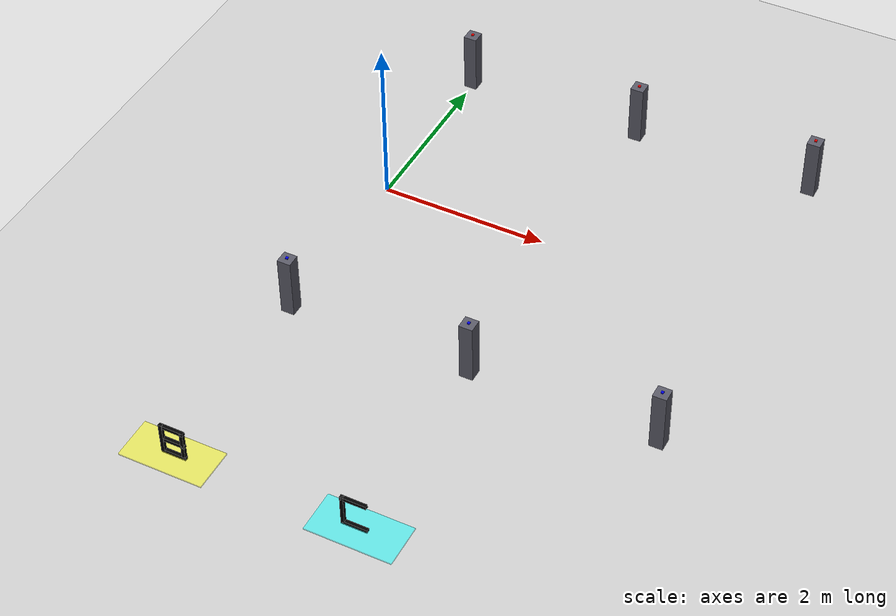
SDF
<sdf version="1.4">
 <world name="default">
  <model name="ground_plane">
   <static>1</static>
   <link name="link">
    <collision name="collision">
     <geometry><plane><normal>0 0 1</normal><size>100 100</size></plane></geometry>
     <surface><friction><ode><mu>100</mu><mu2>50</mu2></ode></friction></surface>
    </collision>
    <visual name="visual">
     <cast_shadows>0</cast_shadows>
     <geometry><plane><normal>0 0 1</normal><size>100 100</size></plane></geometry>
     <material>
      <script><uri>file://media/materials/scripts/gazebo.material</uri><name>Gazebo/Grey</name></script>
     </material>
    </visual>
    <velocity_decay><linear>0</linear><angular>0</angular></velocity_decay>
   </link>
  </model>
  <model name="red_cube_3">
   <pose>0.0 2.2 0.75 0 0 0.0</pose>
   <link name="link">
    <inertial><mass>0.1</mass></inertial>
    <collision name="collision"><geometry><box><size>0.03 0.03 0.03</size></box></geometry></collision>
    <visual name="visual">
     <geometry><box><size>0.03 0.03 0.03</size></box></geometry>
     <material><ambient>1 0 0 1</ambient><diffuse>1 0 0 1</diffuse></material>
    </visual>
   </link>
  </model>
  <model name="red_cube_4">
   <pose>2.2 2.2 0.75 0 0 0.0</pose>
   <link name="link">
    <inertial><mass>0.1</mass></inertial>
    <collision name="collision"><geometry><box><size>0.03 0.03 0.03</size></box></geometry></collision>
    <visual name="visual">
     <geometry><box><size>0.03 0.03 0.03</size></box></geometry>
     <material><ambient>1 0 0 1</ambient><diffuse>1 0 0 1</diffuse></material>
    </visual>
   </link>
  </model>
  <model name="red_cube_5">
   <pose>4.4 2.2 0.75 0 0 0.0</pose>
   <link name="link">
    <inertial><mass>0.1</mass></inertial>
    <collision name="collision"><geometry><box><size>0.03 0.03 0.03</size></box></geometry></collision>
    <visual name="visual">
     <geometry><box><size>0.03 0.03 0.03</size></box></geometry>
     <material><ambient>1 0 0 1</ambient><diffuse>1 0 0 1</diffuse></material>
    </visual>
   </link>
  </model>
  <model name="blue_cube_3">
   <pose>0.0 -2.2 0.75 0 0 0.0</pose>
   <link name="link">
    <inertial><mass>0.1</mass></inertial>
    <collision name="collision"><geometry><box><size>0.03 0.03 0.03</size></box></geometry></collision>
    <visual name="visual">
     <geometry><box><size>0.03 0.03 0.03</size></box></geometry>
     <material><ambient>0 0 1 1</ambient><diffuse>0 0 1 1</diffuse></material>
    </visual>
   </link>
  </model>
  <model name="blue_cube_4">
   <pose>2.2 -2.2 0.75 0 0 0.0</pose>
   <link name="link">
    <inertial><mass>0.1</mass></inertial>
    <collision name="collision"><geometry><box><size>0.03 0.03 0.03</size></box></geometry></collision>
    <visual name="visual">
     <geometry><box><size>0.03 0.03 0.03</size></box></geometry>
     <material><ambient>0 0 1 1</ambient><diffuse>0 0 1 1</diffuse></material>
    </visual>
   </link>
  </model>
  <model name="blue_cube_5">
   <pose>4.4 -2.2 0.75 0 0 0.0</pose>
   <link name="link">
    <inertial><mass>0.1</mass></inertial>
    <collision name="collision"><geometry><box><size>0.03 0.03 0.03</size></box></geometry></collision>
    <visual name="visual">
     <geometry><box><size>0.03 0.03 0.03</size></box></geometry>
     <material><ambient>0 0 1 1</ambient><diffuse>0 0 1 1</diffuse></material>
    </visual>
   </link>
  </model>
  <model name="zone_b">
   <pose>0.0 -4.6 0.01 0 0 0.0</pose>
   <static>true</static>
   <pose>3.0 0.0 0.01 0 0 0</pose>
   <link name="base">
    <visual name="visual">
     <geometry><box><size>1.0 0.5 0.02</size></box></geometry>
     <material><ambient>1 1 0 0.5</ambient><diffuse>1 1 0 0.5</diffuse></material>
    </visual>
   </link>
   <link name="letter_B_vertical_stroke">
    <pose>-0.1 0 0.2 0 0 0</pose>
    <visual name="v">
     <geometry><box><size>0.04 0.04 0.4</size></box></geometry>
     <material><ambient>0 0 0 1</ambient><diffuse>0 0 0 1</diffuse></material>
    </visual>
   </link>
   <link name="letter_B_top_horizontal">
    <pose>0.05 0 0.38 0 0 0</pose>
    <visual name="v">
     <geometry><box><size>0.25 0.04 0.04</size></box></geometry>
     <material><ambient>0 0 0 1</ambient><diffuse>0 0 0 1</diffuse></material>
    </visual>
   </link>
   <link name="letter_B_middle_horizontal">
    <pose>0.05 0 0.2 0 0 0</pose>
    <visual name="v">
     <geometry><box><size>0.25 0.04 0.04</size></box></geometry>
     <material><ambient>0 0 0 1</ambient><diffuse>0 0 0 1</diffuse></material>
    </visual>
   </link>
   <link name="letter_B_bottom_horizontal">
    <pose>0.05 0 0.02 0 0 0</pose>
    <visual name="v">
     <geometry><box><size>0.25 0.04 0.04</size></box></geometry>
     <material><ambient>0 0 0 1</ambient><diffuse>0 0 0 1</diffuse></material>
    </visual>
   </link>
   <link name="letter_B_top_vertical_stroke">
    <pose>0.15 0 0.29 0 0 0</pose>
    <visual name="v">
     <geometry><box><size>0.04 0.04 0.2</size></box></geometry>
     <material><ambient>0 0 0 1</ambient><diffuse>0 0 0 1</diffuse></material>
    </visual>
   </link>
   <link name="letter_B_bottom_vertical_stroke">
    <pose>0.15 0 0.11 0 0 0</pose>
    <visual name="v">
     <geometry><box><size>0.04 0.04 0.2</size></box></geometry>
     <material><ambient>0 0 0 1</ambient><diffuse>0 0 0 1</diffuse></material>
    </visual>
   </link>
  </model>
  <model name="zone_c">
   <pose>2.2 -4.6 0.01 0 0 0.0</pose>
   <static>true</static>
   <pose>3.0 -1.0 0.01 0 0 0</pose>
   <link name="base">
    <visual name="visual">
     <geometry><box><size>1.0 0.5 0.02</size></box></geometry>
     <material><ambient>0 1 1 0.5</ambient><diffuse>0 1 1 0.5</diffuse></material>
    </visual>
   </link>
   <link name="letter_C_1">
    <pose>-0.05 0 0.38 0 0 0</pose>
    <visual name="v">
     <geometry><box><size>0.3 0.04 0.04</size></box></geometry>
     <material><ambient>0 0 0 1</ambient><diffuse>0 0 0 1</diffuse></material>
    </visual>
   </link>
   <link name="letter_C_2">
    <pose>-0.05 0 0.02 0 0 0</pose>
    <visual name="v">
     <geometry><box><size>0.3 0.04 0.04</size></box></geometry>
     <material><ambient>0 0 0 1</ambient><diffuse>0 0 0 1</diffuse></material>
    </visual>
   </link>
   <link name="letter_C_3">
    <pose>-0.18 0 0.2 0 0 0</pose>
    <visual name="v">
     <geometry><box><size>0.04 0.04 0.4</size></box></geometry>
     <material><ambient>0 0 0 1</ambient><diffuse>0 0 0 1</diffuse></material>
    </visual>
   </link>
  </model>
  <model name="support_red_cube_3">
   <static>true</static>
   <pose>0.0 2.2 0.375 0 0 0</pose>
   <link name="link">
    <collision name="collision"><geometry><box><size>0.16 0.16 0.75</size></box></geometry></collision>
    <visual name="visual">
     <geometry><box><size>0.16 0.16 0.75</size></box></geometry>
     <material><ambient>0.35 0.35 0.4 1</ambient><diffuse>0.35 0.35 0.4 1</diffuse></material>
    </visual>
   </link>
  </model>
  <model name="support_red_cube_4">
   <static>true</static>
   <pose>2.2 2.2 0.375 0 0 0</pose>
   <link name="link">
    <collision name="collision"><geometry><box><size>0.16 0.16 0.75</size></box></geometry></collision>
    <visual name="visual">
     <geometry><box><size>0.16 0.16 0.75</size></box></geometry>
     <material><ambient>0.35 0.35 0.4 1</ambient><diffuse>0.35 0.35 0.4 1</diffuse></material>
    </visual>
   </link>
  </model>
  <model name="support_red_cube_5">
   <static>true</static>
   <pose>4.4 2.2 0.375 0 0 0</pose>
   <link name="link">
    <collision name="collision"><geometry><box><size>0.16 0.16 0.75</size></box></geometry></collision>
    <visual name="visual">
     <geometry><box><size>0.16 0.16 0.75</size></box></geometry>
     <material><ambient>0.35 0.35 0.4 1</ambient><diffuse>0.35 0.35 0.4 1</diffuse></material>
    </visual>
   </link>
  </model>
  <model name="support_blue_cube_3">
   <static>true</static>
   <pose>0.0 -2.2 0.375 0 0 0</pose>
   <link name="link">
    <collision name="collision"><geometry><box><size>0.16 0.16 0.75</size></box></geometry></collision>
    <visual name="visual">
     <geometry><box><size>0.16 0.16 0.75</size></box></geometry>
     <material><ambient>0.35 0.35 0.4 1</ambient><diffuse>0.35 0.35 0.4 1</diffuse></material>
    </visual>
   </link>
  </model>
  <model name="support_blue_cube_4">
   <static>true</static>
   <pose>2.2 -2.2 0.375 0 0 0</pose>
   <link name="link">
    <collision name="collision"><geometry><box><size>0.16 0.16 0.75</size></box></geometry></collision>
    <visual name="visual">
     <geometry><box><size>0.16 0.16 0.75</size></box></geometry>
     <material><ambient>0.35 0.35 0.4 1</ambient><diffuse>0.35 0.35 0.4 1</diffuse></material>
    </visual>
   </link>
  </model>
  <model name="support_blue_cube_5">
   <static>true</static>
   <pose>4.4 -2.2 0.375 0 0 0</pose>
   <link name="link">
    <collision name="collision"><geometry><box><size>0.16 0.16 0.75</size></box></geometry></collision>
    <visual name="visual">
     <geometry><box><size>0.16 0.16 0.75</size></box></geometry>
     <material><ambient>0.35 0.35 0.4 1</ambient><diffuse>0.35 0.35 0.4 1</diffuse></material>
    </visual>
   </link>
  </model>
 </world>
</sdf>
